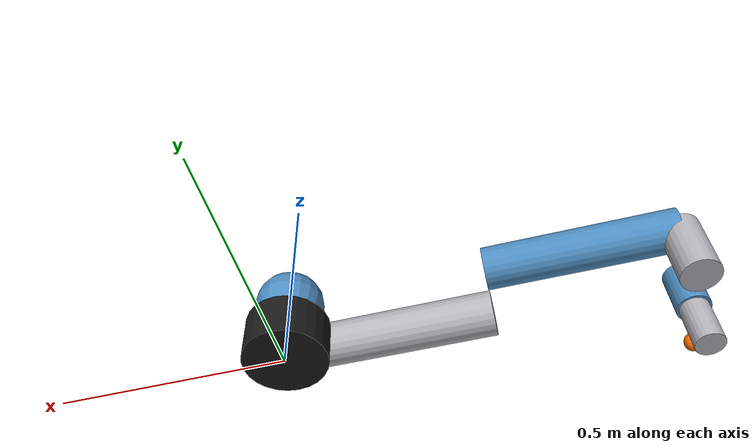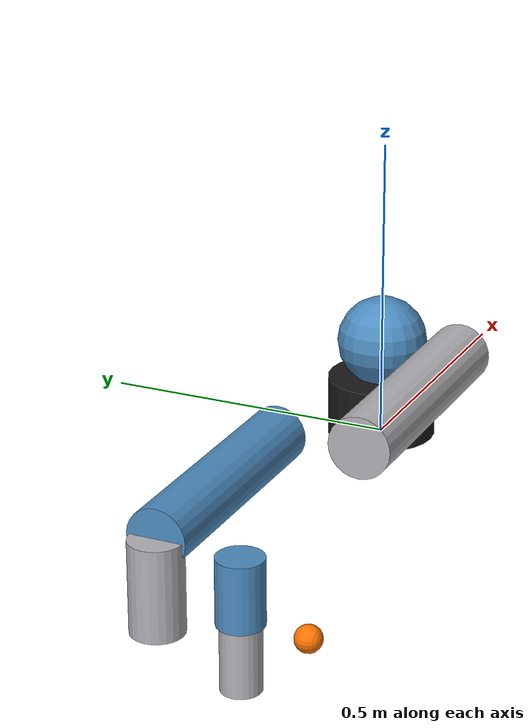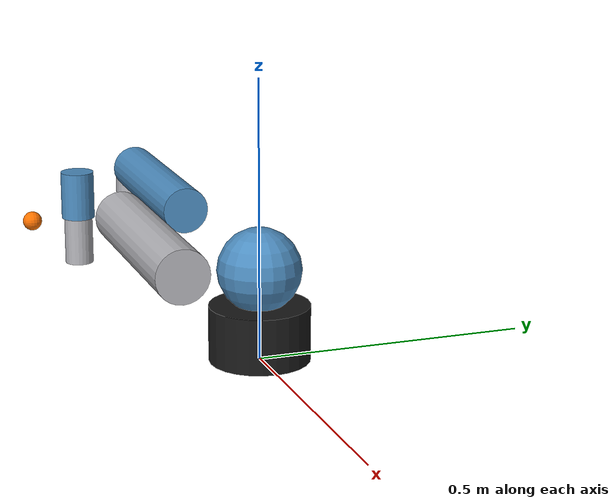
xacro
<?xml version="1.0"?>
<robot xmlns:xacro="http://www.ros.org/wiki/xacro" name="real_cartpole">
  <xacro:property name="pi" value="3.1415926535897931"/>

  <material name="black">
    <color rgba="0.1 0.1 0.1 1.0"/>
  </material>
  <material name="blue">
    <color rgba="0.30 0.55 0.75 1.0"/>
  </material>
  <material name="gray">
    <color rgba="0.70 0.70 0.72 1.0"/>
  </material>
  <material name="orange">
    <color rgba="1.0 0.45 0.0 1.0"/>
  </material>

  <link name="world"/>

  <joint name="world_to_base_link" type="fixed">
    <parent link="world"/>
    <child link="base_link"/>
    <origin xyz="0 0 0" rpy="0 0 ${pi}"/>
  </joint>

  <link name="base_link">
    <visual>
      <origin xyz="0 0 0.05" rpy="0 0 0"/>
      <geometry>
        <cylinder radius="0.09" length="0.10"/>
      </geometry>
      <material name="black"/>
    </visual>
    <collision>
      <origin xyz="0 0 0.05" rpy="0 0 0"/>
      <geometry>
        <cylinder radius="0.09" length="0.10"/>
      </geometry>
    </collision>
    <inertial>
      <origin xyz="0 0 0.05" rpy="0 0 0"/>
      <mass value="4.0"/>
      <inertia ixx="0.0072" ixy="0.0" ixz="0.0" iyy="0.0072" iyz="0.0" izz="0.0044"/>
    </inertial>
  </link>

  <link name="shoulder_link">
    <visual>
      <origin xyz="0 0 0" rpy="0 0 0"/>
      <geometry>
        <sphere radius="0.075"/>
      </geometry>
      <material name="blue"/>
    </visual>
    <collision>
      <origin xyz="0 0 0" rpy="0 0 0"/>
      <geometry>
        <sphere radius="0.075"/>
      </geometry>
    </collision>
    <inertial>
      <origin xyz="0 0 0" rpy="0 0 0"/>
      <mass value="3.7"/>
      <inertia ixx="0.0103" ixy="0.0" ixz="0.0" iyy="0.0103" iyz="0.0" izz="0.0067"/>
    </inertial>
  </link>

  <joint name="shoulder_pan_joint" type="revolute">
    <parent link="base_link"/>
    <child link="shoulder_link"/>
    <origin xyz="0 0 0.163" rpy="0 0 0"/>
    <axis xyz="0 0 1"/>
    <limit lower="-6.28319" upper="6.28319" effort="150" velocity="1.5"/>
  </joint>

  <link name="upper_arm_link">
    <visual>
      <origin xyz="0 0 0.2125" rpy="0 0 0"/>
      <geometry>
        <cylinder radius="0.05" length="0.425"/>
      </geometry>
      <material name="gray"/>
    </visual>
    <collision>
      <origin xyz="0 0 0.2125" rpy="0 0 0"/>
      <geometry>
        <cylinder radius="0.05" length="0.425"/>
      </geometry>
    </collision>
    <inertial>
      <origin xyz="0 0 0.2125" rpy="0 0 0"/>
      <mass value="8.393"/>
      <inertia ixx="0.1339" ixy="0.0" ixz="0.0" iyy="0.1339" iyz="0.0" izz="0.0151"/>
    </inertial>
  </link>

  <joint name="shoulder_lift_joint" type="revolute">
    <parent link="shoulder_link"/>
    <child link="upper_arm_link"/>
    <origin xyz="0 0.138 0" rpy="0 ${pi / 2.0} 0"/>
    <axis xyz="0 1 0"/>
    <limit lower="-6.28319" upper="6.28319" effort="150" velocity="1.5"/>
  </joint>

  <link name="forearm_link">
    <visual>
      <origin xyz="0 0 0.196" rpy="0 0 0"/>
      <geometry>
        <cylinder radius="0.045" length="0.392"/>
      </geometry>
      <material name="blue"/>
    </visual>
    <collision>
      <origin xyz="0 0 0.196" rpy="0 0 0"/>
      <geometry>
        <cylinder radius="0.045" length="0.392"/>
      </geometry>
    </collision>
    <inertial>
      <origin xyz="0 0 0.196" rpy="0 0 0"/>
      <mass value="2.275"/>
      <inertia ixx="0.0312" ixy="0.0" ixz="0.0" iyy="0.0312" iyz="0.0" izz="0.0041"/>
    </inertial>
  </link>

  <joint name="elbow_joint" type="revolute">
    <parent link="upper_arm_link"/>
    <child link="forearm_link"/>
    <origin xyz="0 -0.131 0.425" rpy="0 0 0"/>
    <axis xyz="0 1 0"/>
    <limit lower="-3.1415" upper="3.1415" effort="150" velocity="1.5"/>
  </joint>

  <link name="wrist_1_link">
    <visual>
      <origin xyz="0 0 0.07" rpy="0 0 0"/>
      <geometry>
        <cylinder radius="0.04" length="0.14"/>
      </geometry>
      <material name="gray"/>
    </visual>
    <collision>
      <origin xyz="0 0 0.07" rpy="0 0 0"/>
      <geometry>
        <cylinder radius="0.04" length="0.14"/>
      </geometry>
    </collision>
    <inertial>
      <origin xyz="0 0.127 0" rpy="0 0 0"/>
      <mass value="1.219"/>
      <inertia ixx="0.00256" ixy="0.0" ixz="0.0" iyy="0.00256" iyz="0.0" izz="0.00219"/>
    </inertial>
  </link>

  <joint name="wrist_1_joint" type="revolute">
    <parent link="forearm_link"/>
    <child link="wrist_1_link"/>
    <origin xyz="0 0 0.392" rpy="0 ${pi / 2.0} 0"/>
    <axis xyz="0 1 0"/>
    <limit lower="-6.28319" upper="6.28319" effort="28" velocity="2.0"/>
  </joint>

  <link name="wrist_2_link">
    <visual>
      <origin xyz="0 0 0.05" rpy="0 0 0"/>
      <geometry>
        <cylinder radius="0.035" length="0.10"/>
      </geometry>
      <material name="blue"/>
    </visual>
    <collision>
      <origin xyz="0 0 0.05" rpy="0 0 0"/>
      <geometry>
        <cylinder radius="0.035" length="0.10"/>
      </geometry>
    </collision>
    <inertial>
      <origin xyz="0 0 0.05" rpy="0 0 0"/>
      <mass value="1.219"/>
      <inertia ixx="0.00256" ixy="0.0" ixz="0.0" iyy="0.00256" iyz="0.0" izz="0.00219"/>
    </inertial>
  </link>

  <joint name="wrist_2_joint" type="revolute">
    <parent link="wrist_1_link"/>
    <child link="wrist_2_link"/>
    <origin xyz="0 0.127 0" rpy="0 0 0"/>
    <axis xyz="0 0 1"/>
    <limit lower="-6.28319" upper="6.28319" effort="28" velocity="2.0"/>
  </joint>

  <link name="wrist_3_link">
    <visual>
      <origin xyz="0 0 0.05" rpy="0 0 0"/>
      <geometry>
        <cylinder radius="0.03" length="0.10"/>
      </geometry>
      <material name="gray"/>
    </visual>
    <collision>
      <origin xyz="0 0 0.05" rpy="0 0 0"/>
      <geometry>
        <cylinder radius="0.03" length="0.10"/>
      </geometry>
    </collision>
    <inertial>
      <origin xyz="0 0.077 0" rpy="0 0 0"/>
      <mass value="0.1889"/>
      <inertia ixx="0.000132" ixy="0.0" ixz="0.0" iyy="0.000099" iyz="0.0" izz="0.000099"/>
    </inertial>
  </link>

  <joint name="wrist_3_joint" type="revolute">
    <parent link="wrist_2_link"/>
    <child link="wrist_3_link"/>
    <origin xyz="0 0 0.1" rpy="0 0 0"/>
    <axis xyz="0 1 0"/>
    <limit lower="-6.28319" upper="6.28319" effort="28" velocity="2.0"/>
  </joint>

  <link name="attachment_site_link">
    <visual>
      <origin xyz="0 0 0" rpy="0 0 0"/>
      <geometry>
        <sphere radius="0.02"/>
      </geometry>
      <material name="orange"/>
    </visual>
    <collision>
      <origin xyz="0 0 0" rpy="0 0 0"/>
      <geometry>
        <sphere radius="0.02"/>
      </geometry>
    </collision>
    <inertial>
      <origin xyz="0 0 0" rpy="0 0 0"/>
      <mass value="0.02"/>
      <inertia ixx="1e-5" ixy="0.0" ixz="0.0" iyy="1e-5" iyz="0.0" izz="1e-5"/>
    </inertial>
  </link>

  <joint name="attachment_site_joint" type="fixed">
    <parent link="wrist_3_link"/>
    <child link="attachment_site_link"/>
    <origin xyz="0 0.1 0" rpy="-${pi / 2.0} 0 0"/>
  </joint>

  <ros2_control name="UR5eMockSystem" type="system">
    <hardware>
      <plugin>mock_components/GenericSystem</plugin>
    </hardware>

    <joint name="shoulder_pan_joint">
      <command_interface name="position"/>
      <state_interface name="position"/>
      <state_interface name="velocity"/>
    </joint>
    <joint name="shoulder_lift_joint">
      <command_interface name="position"/>
      <state_interface name="position"/>
      <state_interface name="velocity"/>
    </joint>
    <joint name="elbow_joint">
      <command_interface name="position"/>
      <state_interface name="position"/>
      <state_interface name="velocity"/>
    </joint>
    <joint name="wrist_1_joint">
      <command_interface name="position"/>
      <state_interface name="position"/>
      <state_interface name="velocity"/>
    </joint>
    <joint name="wrist_2_joint">
      <command_interface name="position"/>
      <state_interface name="position"/>
      <state_interface name="velocity"/>
    </joint>
    <joint name="wrist_3_joint">
      <command_interface name="position"/>
      <state_interface name="position"/>
      <state_interface name="velocity"/>
    </joint>
  </ros2_control>
</robot>
